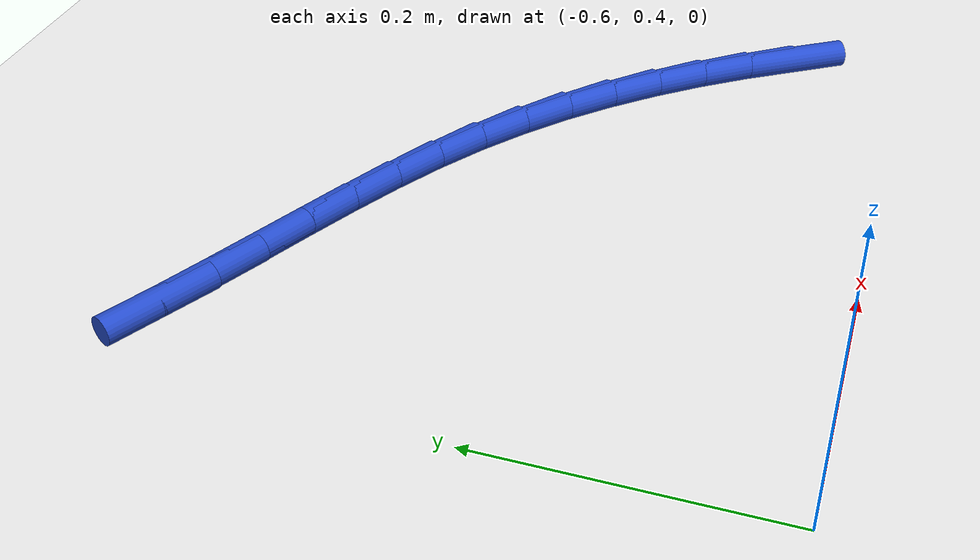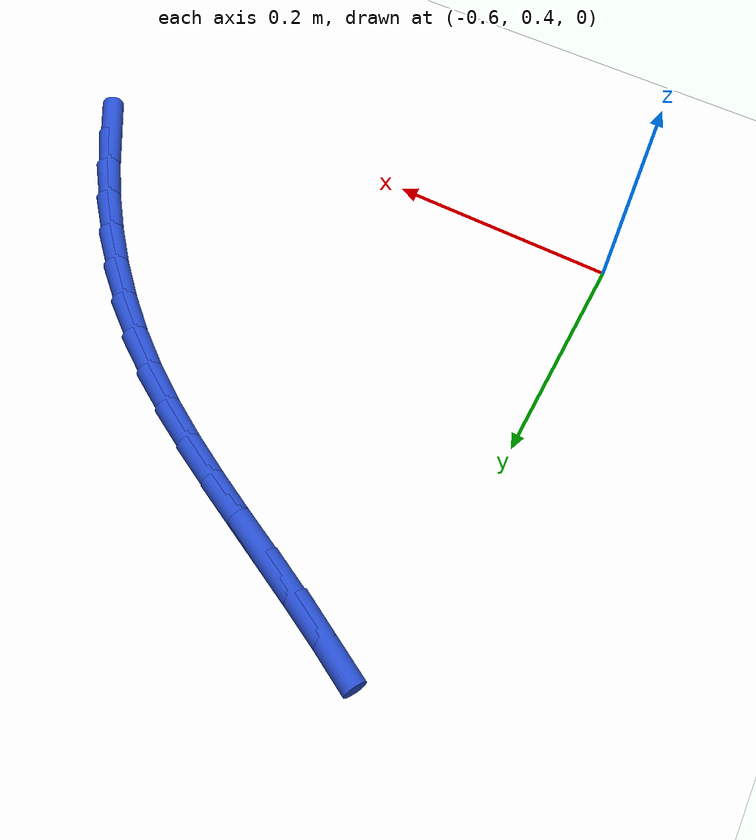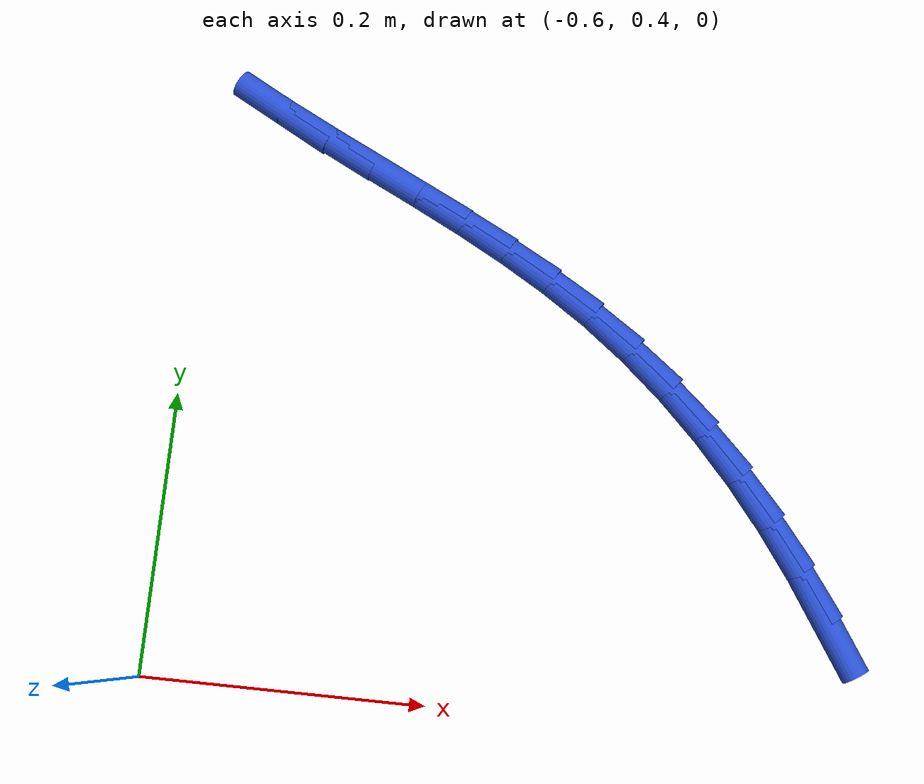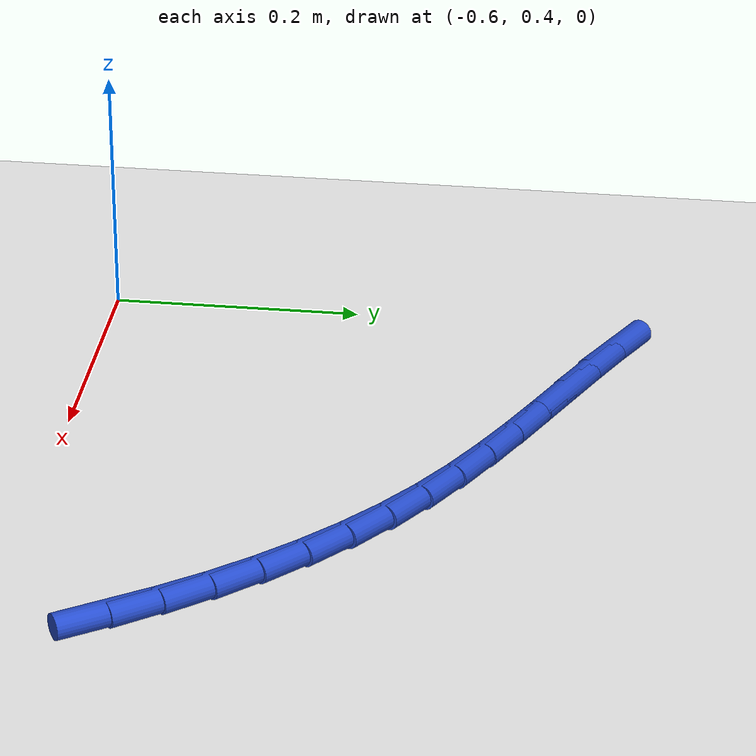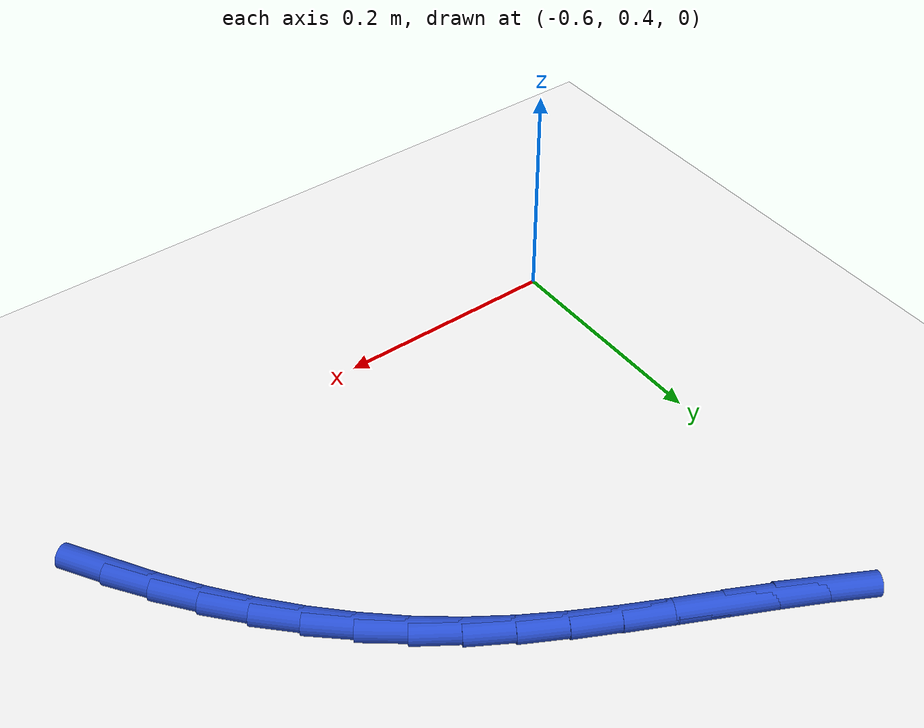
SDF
<sdf version="1.6">
 <world name="default">
  <model name="ground_plane">
   <static>1</static>
   <link name="link">
    <collision name="collision">
     <geometry><plane><normal>0 0 1</normal><size>100 100</size></plane></geometry>
     <surface><friction><ode><mu>100</mu><mu2>50</mu2></ode></friction></surface>
    </collision>
    <visual name="visual">
     <cast_shadows>0</cast_shadows>
     <geometry><plane><normal>0 0 1</normal><size>100 100</size></plane></geometry>
     <material>
      <script><uri>file://media/materials/scripts/gazebo.material</uri><name>Gazebo/WhiteGlow</name></script>
     </material>
    </visual>
   </link>
  </model>
  <model name="line">
   <link name="link_13">
    <pose>-0.1291098669257019 0.4834399595626423 0.01 0 1.57 -1.000411944736257</pose>
    <collision name="collision">
     <geometry><cylinder><radius>0.01</radius><length>0.08</length></cylinder></geometry>
    </collision>
    <visual name="visual">
     <material>
      <script><name>Gazebo/Blue</name><uri>file://media/materials/scripts/gazebo.material</uri></script>
     </material>
     <geometry><cylinder><radius>0.01</radius><length>0.08</length></cylinder></geometry>
    </visual>
   </link>
   <link name="link_14">
    <pose>-0.15038220623286364 0.516599702311678 0.01 0 1.57 -0.94986480309257</pose>
    <collision name="collision">
     <geometry><cylinder><radius>0.01</radius><length>0.08</length></cylinder></geometry>
    </collision>
    <visual name="visual">
     <material>
      <script><name>Gazebo/Blue</name><uri>file://media/materials/scripts/gazebo.material</uri></script>
     </material>
     <geometry><cylinder><radius>0.01</radius><length>0.08</length></cylinder></geometry>
    </visual>
   </link>
   <link name="link_15">
    <pose>-0.17323229590484132 0.5485437413668817 0.01 0 1.57 -0.8970365400116441</pose>
    <collision name="collision">
     <geometry><cylinder><radius>0.01</radius><length>0.08</length></cylinder></geometry>
    </collision>
    <visual name="visual">
     <material>
      <script><name>Gazebo/Blue</name><uri>file://media/materials/scripts/gazebo.material</uri></script>
     </material>
     <geometry><cylinder><radius>0.01</radius><length>0.08</length></cylinder></geometry>
    </visual>
   </link>
   <link name="link_16">
    <pose>-0.1976381845501389 0.5791125390913763 0.01 0 1.57 -0.8416253755599946</pose>
    <collision name="collision">
     <geometry><cylinder><radius>0.01</radius><length>0.08</length></cylinder></geometry>
    </collision>
    <visual name="visual">
     <material>
      <script><name>Gazebo/Blue</name><uri>file://media/materials/scripts/gazebo.material</uri></script>
     </material>
     <geometry><cylinder><radius>0.01</radius><length>0.08</length></cylinder></geometry>
    </visual>
   </link>
   <link name="link_17">
    <pose>-0.22357792077726069 0.6081465578482849 0.01 0 1.57 -0.7833553201234023</pose>
    <collision name="collision">
     <geometry><cylinder><radius>0.01</radius><length>0.08</length></cylinder></geometry>
    </collision>
    <visual name="visual">
     <material>
      <script><name>Gazebo/Blue</name><uri>file://media/materials/scripts/gazebo.material</uri></script>
     </material>
     <geometry><cylinder><radius>0.01</radius><length>0.08</length></cylinder></geometry>
    </visual>
   </link>
   <link name="link_18">
    <pose>-0.2510295531947108 0.63548626000073 0.01 0 1.57 -0.721990849593027</pose>
    <collision name="collision">
     <geometry><cylinder><radius>0.01</radius><length>0.08</length></cylinder></geometry>
    </collision>
    <visual name="visual">
     <material>
      <script><name>Gazebo/Blue</name><uri>file://media/materials/scripts/gazebo.material</uri></script>
     </material>
     <geometry><cylinder><radius>0.01</radius><length>0.08</length></cylinder></geometry>
    </visual>
   </link>
   <link name="link_19">
    <pose>-0.27997113041099336 0.6609721079118354 0.01 0 1.57 -0.6573561689004592</pose>
    <collision name="collision">
     <geometry><cylinder><radius>0.01</radius><length>0.08</length></cylinder></geometry>
    </collision>
    <visual name="visual">
     <material>
      <script><name>Gazebo/Blue</name><uri>file://media/materials/scripts/gazebo.material</uri></script>
     </material>
     <geometry><cylinder><radius>0.01</radius><length>0.08</length></cylinder></geometry>
    </visual>
   </link>
   <link name="link_20">
    <pose>-0.3103807009848645 0.6844445640585316 0.01 0 1.57 -0.5922400379620084</pose>
    <collision name="collision">
     <geometry><cylinder><radius>0.01</radius><length>0.08</length></cylinder></geometry>
    </collision>
    <visual name="visual">
     <material>
      <script><name>Gazebo/Blue</name><uri>file://media/materials/scripts/gazebo.material</uri></script>
     </material>
     <geometry><cylinder><radius>0.01</radius><length>0.08</length></cylinder></geometry>
    </visual>
   </link>
   <link name="link_21">
    <pose>-0.3421913610556993 0.7058469282699311 0.01 0 1.57 -0.5380046331219901</pose>
    <collision name="collision">
     <geometry><cylinder><radius>0.01</radius><length>0.08</length></cylinder></geometry>
    </collision>
    <visual name="visual">
     <material>
      <script><name>Gazebo/Blue</name><uri>file://media/materials/scripts/gazebo.material</uri></script>
     </material>
     <geometry><cylinder><radius>0.01</radius><length>0.08</length></cylinder></geometry>
    </visual>
   </link>
   <link name="link_22">
    <pose>-0.37516194686955634 0.725521153579287 0.01 0 1.57 -0.497581631554111</pose>
    <collision name="collision">
     <geometry><cylinder><radius>0.01</radius><length>0.08</length></cylinder></geometry>
    </collision>
    <visual name="visual">
     <material>
      <script><name>Gazebo/Blue</name><uri>file://media/materials/scripts/gazebo.material</uri></script>
     </material>
     <geometry><cylinder><radius>0.01</radius><length>0.08</length></cylinder></geometry>
    </visual>
   </link>
   <link name="link_23">
    <pose>-0.40900907458085145 0.7439057796439568 0.01 0 1.57 -0.4709014705955147</pose>
    <collision name="collision">
     <geometry><cylinder><radius>0.01</radius><length>0.08</length></cylinder></geometry>
    </collision>
    <visual name="visual">
     <material>
      <script><name>Gazebo/Blue</name><uri>file://media/materials/scripts/gazebo.material</uri></script>
     </material>
     <geometry><cylinder><radius>0.01</radius><length>0.08</length></cylinder></geometry>
    </visual>
   </link>
   <link name="link_24">
    <pose>-0.4434493603440008 0.7614393461212969 0.01 0 1.57 -0.4577834412397186</pose>
    <collision name="collision">
     <geometry><cylinder><radius>0.01</radius><length>0.08</length></cylinder></geometry>
    </collision>
    <visual name="visual">
     <material>
      <script><name>Gazebo/Blue</name><uri>file://media/materials/scripts/gazebo.material</uri></script>
     </material>
     <geometry><cylinder><radius>0.01</radius><length>0.08</length></cylinder></geometry>
    </visual>
   </link>
   <link name="link_25">
    <pose>-0.47819942031342094 0.7785603926686655 0.01 0 1.57 -0.4580845987460513</pose>
    <collision name="collision">
     <geometry><cylinder><radius>0.01</radius><length>0.08</length></cylinder></geometry>
    </collision>
    <visual name="visual">
     <material>
      <script><name>Gazebo/Blue</name><uri>file://media/materials/scripts/gazebo.material</uri></script>
     </material>
     <geometry><cylinder><radius>0.01</radius><length>0.08</length></cylinder></geometry>
    </visual>
   </link>
   <link name="link_26">
    <pose>-0.5129758706435278 0.7957074589434193 0.01 0 1.57 -0.47176964728399934</pose>
    <collision name="collision">
     <geometry><cylinder><radius>0.01</radius><length>0.08</length></cylinder></geometry>
    </collision>
    <visual name="visual">
     <material>
      <script><name>Gazebo/Blue</name><uri>file://media/materials/scripts/gazebo.material</uri></script>
     </material>
     <geometry><cylinder><radius>0.01</radius><length>0.08</length></cylinder></geometry>
    </visual>
   </link>
   <link name="link_27">
    <pose>-0.5474953274887373 0.8133190846029155 0.01 0 1.57 -0.49890843818367014</pose>
    <collision name="collision">
     <geometry><cylinder><radius>0.01</radius><length>0.08</length></cylinder></geometry>
    </collision>
    <visual name="visual">
     <material>
      <script><name>Gazebo/Blue</name><uri>file://media/materials/scripts/gazebo.material</uri></script>
     </material>
     <geometry><cylinder><radius>0.01</radius><length>0.08</length></cylinder></geometry>
    </visual>
   </link>
  </model>
 </world>
</sdf>
